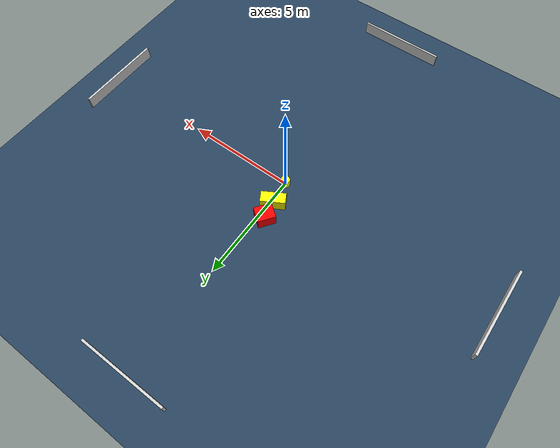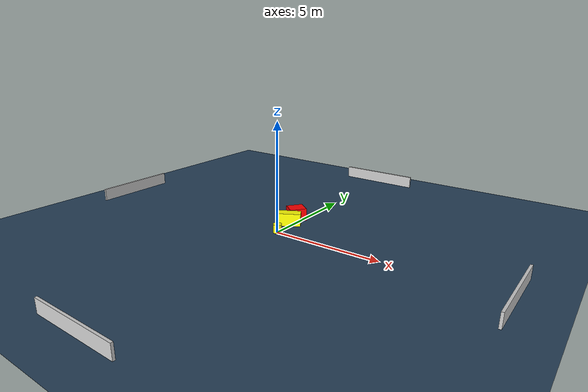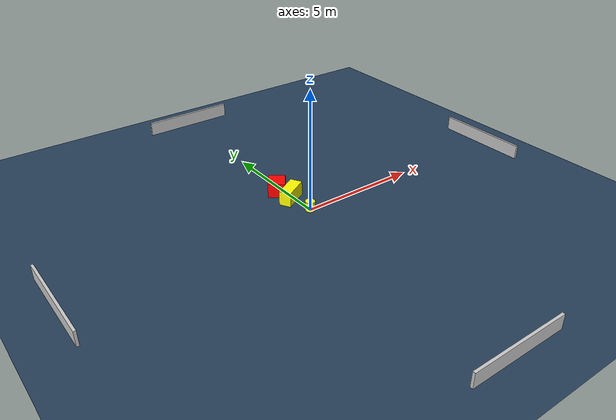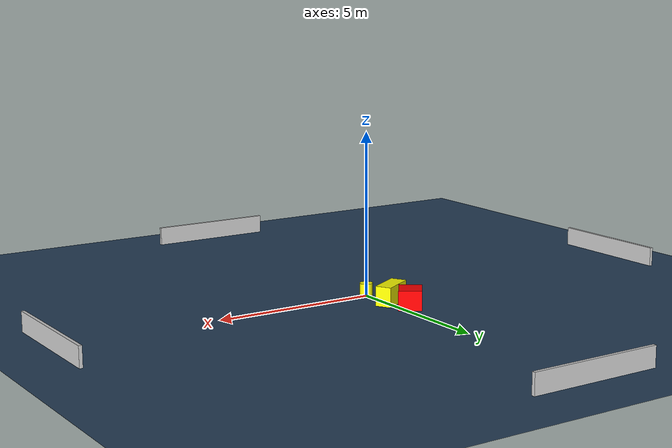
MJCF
<?xml version="1.0" ?>
<mujoco model="generated_environment">
  <option timestep="0.01" integrator="RK4" cone="elliptic"/>
  <default>
    <geom density="1"/>
  </default>
  <asset>
    <texture builtin="gradient" height="3072" name="skybox" rgb1="0.3 0.5 0.7" rgb2="0 0 0" type="skybox" width="512"/>
    <texture builtin="checker" height="300" name="groundplane" rgb1="0.2 0.3 0.4" rgb2="0.1 0.2 0.3" type="2d" width="300"/>
    <material name="groundplane" reflectance="0.2" texrepeat="5 5" texture="groundplane"/>
  </asset>
  <worldbody>
    <light dir="0 0 -1" directional="true" pos="0 0 1.5"/>
    <geom condim="3" friction="0.5 0.005 0.001" material="groundplane" name="floor" pos="0 0 0" size="0 0 0.05" type="plane"/>
    <body name="walls">
      <geom name="wall_1" condim="4" pos="-10.0 0.0 0.3" rgba="0.800000011920929 0.800000011920929 0.800000011920929 1.0" size="0.05 2.0 0.3" type="box"/>
      <geom name="wall_2" condim="4" pos="10.0 0.0 0.3" rgba="0.800000011920929 0.800000011920929 0.800000011920929 1.0" size="0.05 2.0 0.3" type="box"/>
      <geom name="wall_3" condim="4" pos="0.0 -10.0 0.3" rgba="0.800000011920929 0.800000011920929 0.800000011920929 1.0" size="2.0 0.05 0.3" type="box"/>
      <geom name="wall_4" condim="4" pos="0.0 10.0 0.3" rgba="0.800000011920929 0.800000011920929 0.800000011920929 1.0" size="2.0 0.05 0.3" type="box"/>
    </body>
    <body name="robot">
      <joint name="joint_x" type="slide" pos="0 0 0" axis="1 0 0"/>
      <joint name="joint_y" type="slide" pos="0 0 0" axis="0 1 0"/>
      <geom name="robot" type="cylinder" pos="0.0 0.0 0.2" size="0.2 0.2 0.0" mass="5.0" friction="1.0 0.005 0.0001" condim="4" rgba="1.0 1.0 0.0 1.0"/>
    </body>
    <body name="obstacle_1_movable">
      <geom name="obstacle_1_movable" condim="4" pos="-0.14991697968859752 1.0966941551435614 0.3" euler="0 0 29.633973444528113" friction="0.0 0.005 0.001" rgba="1.0 1.0 0.0 1.0" size="0.5464167895181757 0.24540553518212346 0.3" type="box" mass="0.1"/>
      <joint type="free"/>
    </body>
    <body name="obstacle_2_static">
      <geom name="obstacle_2_static" condim="4" pos="-0.29016519452551276 1.879500757140848 0.3" euler="0 0 323.8272383684572" friction="0.0 0.005 0.001" rgba="1.0 0.0 0.0 1.0" size="0.34665347680992553 0.397858294687532 0.3" type="box"/>
    </body>
  </worldbody>
  <actuator>
    <motor name="actuator_x" joint="joint_x" gear="1" ctrlrange="-1 1"/>
    <motor name="actuator_y" joint="joint_y" gear="1" ctrlrange="-1 1"/>
  </actuator>
</mujoco>
